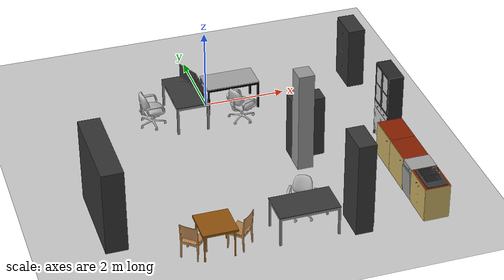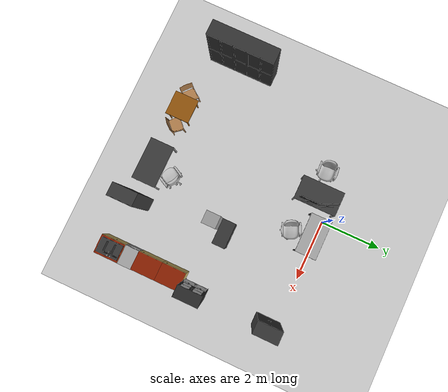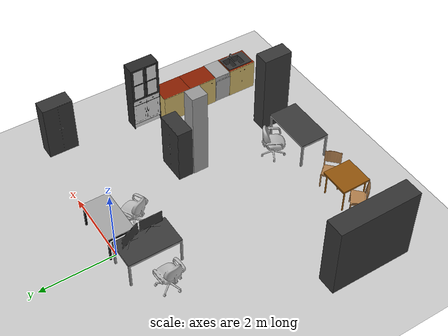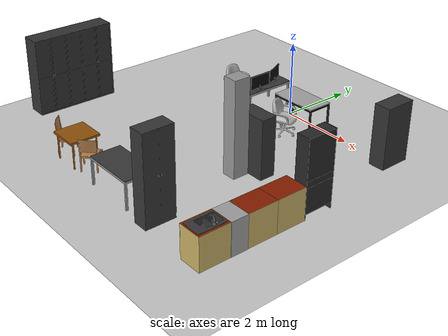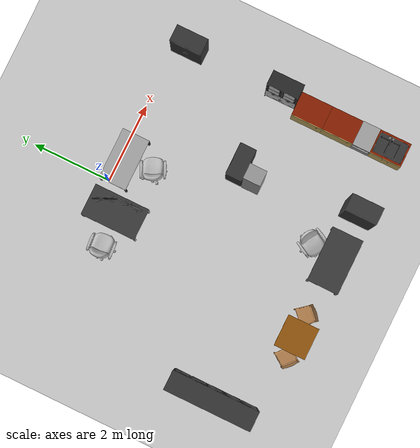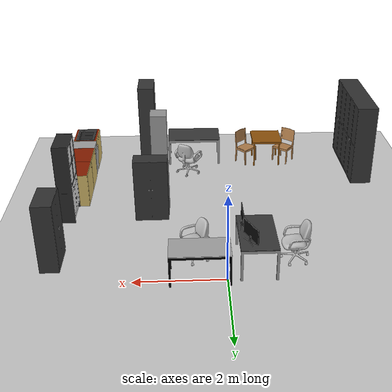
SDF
<sdf version="1.6">
 <world name="default">
  <model name="ground_plane">
   <static>1</static>
   <link name="link">
    <collision name="collision">
     <geometry><plane><normal>0 0 1</normal><size>100 100</size></plane></geometry>
     <surface><friction><ode><mu>100</mu><mu2>50</mu2></ode></friction></surface>
    </collision>
    <visual name="visual">
     <cast_shadows>0</cast_shadows>
     <geometry><plane><normal>0 0 1</normal><size>100 100</size></plane></geometry>
     <material>
      <script><uri>file://media/materials/scripts/gazebo.material</uri><name>Gazebo/Grey</name></script>
     </material>
    </visual>
   </link>
  </model>
  <model name="012_pillar">
   <pose>1.4352 -3.125 0 0 0 -1.5708</pose>
   <link name="Wall_6">
    <collision name="Wall_6_Collision">
     <geometry><box><size>0.43 0.38 2.5</size></box></geometry>
     <pose>0 0 1.25 0 -0 0</pose>
    </collision>
    <visual name="Wall_6_Visual">
     <pose>0 0 1.25 0 -0 0</pose>
     <geometry><box><size>0.43 0.38 2.5</size></box></geometry>
     <material>
      <script><uri>file://media/materials/scripts/gazebo.material</uri><name>Gazebo/Grey</name></script>
      <ambient>1 1 1 1</ambient>
     </material>
    </visual>
   </link>
   <static>1</static>
  </model>
  <model name="rectangle_table">
   <static>1</static>
   <link name="rectangle_table">
    <collision name="surface">
     <pose>0 0 0.7 0 -0 0</pose>
     <geometry><box><size>1.4 0.8 0.079</size></box></geometry>
     <surface><friction><ode><mu>0.6</mu><mu2>0.6</mu2></ode></friction></surface>
    </collision>
    <collision name="left_front_leg">
     <pose>-0.6764 0.3733 0.3305 0 -0 0</pose>
     <geometry><box><size>0.0467 0.0534 0.661</size></box></geometry>
    </collision>
    <collision name="right_front_leg">
     <pose>0.6764 0.3733 0.3305 0 -0 0</pose>
     <geometry><box><size>0.0467 0.0534 0.661</size></box></geometry>
    </collision>
    <collision name="left_back_leg">
     <pose>-0.6764 -0.3733 0.3305 0 -0 0</pose>
     <geometry><box><size>0.0467 0.0534 0.661</size></box></geometry>
    </collision>
    <collision name="right_back_leg">
     <pose>0.6764 -0.3733 0.3305 0 -0 0</pose>
     <geometry><box><size>0.0467 0.0534 0.661</size></box></geometry>
    </collision>
    <visual name="rectangle_table_mesh">
     <geometry><mesh><uri>model://rectangle_table/meshes/model.dae</uri><scale>1 1 1</scale></mesh></geometry>
    </visual>
   </link>
   <pose>-0.647988 -0.512943 0.1 0 0 -1.5708</pose>
  </model>
  <model name="locker_high">
   <static>1</static>
   <link name="locker_high">
    <collision name="locker_high">
     <pose>0 0 1.15 0 -0 0</pose>
     <geometry><box><size>0.44 0.8 2.3</size></box></geometry>
    </collision>
    <visual name="locker_high_mesh">
     <geometry><mesh><uri>model://locker_high/meshes/model.dae</uri><scale>1 1 1</scale></mesh></geometry>
    </visual>
   </link>
   <pose>1.8452 -5.7 0 0 -0 0</pose>
  </model>
  <model name="locker_small">
   <static>1</static>
   <link name="locker_small">
    <collision name="locker_small">
     <pose>0 0 0.775 0 -0 0</pose>
     <geometry><box><size>0.44 0.8 1.55</size></box></geometry>
    </collision>
    <visual name="locker_small_mesh">
     <geometry><mesh><uri>model://locker_small/meshes/model.dae</uri><scale>1 1 1</scale></mesh></geometry>
    </visual>
   </link>
   <pose>1.65271 -2.6794 0 0 -0 1.5708</pose>
  </model>
  <model name="sink">
   <static>1</static>
   <link name="sink">
    <collision name="sink">
     <pose>0 0 0.4398 0 -0 0</pose>
     <geometry><box><size>0.64 0.8 0.8796</size></box></geometry>
    </collision>
    <collision name="tap">
     <pose>-0.15 -0.0775 0.9746 0 -0 0</pose>
     <geometry><box><size>0.22 0.13 0.19</size></box></geometry>
    </collision>
    <visual name="sink_mesh">
     <geometry><mesh><uri>model://sink/meshes/model.dae</uri><scale>1 1 1</scale></mesh></geometry>
    </visual>
   </link>
   <pose>3.52998 -5.69531 0 0 0 -3.14159</pose>
  </model>
  <model name="dishwasher">
   <static>1</static>
   <link name="dishwasher">
    <collision name="dishwasher">
     <pose>0 0 0.425 0 -0 0</pose>
     <geometry><box><size>0.65 0.45 0.85</size></box></geometry>
    </collision>
    <visual name="dishwasher_mesh">
     <geometry><mesh><uri>model://dishwasher/meshes/model.dae</uri><scale>1 1 1</scale></mesh></geometry>
    </visual>
   </link>
   <pose>3.52499 -5.07031 0 0 0 -3.14159</pose>
  </model>
  <model name="cupboard">
   <static>1</static>
   <link name="cupboard">
    <collision name="cupboard">
     <pose>0 0 0.425 0 -0 0</pose>
     <geometry><box><size>0.64 0.8 0.85</size></box></geometry>
    </collision>
    <visual name="cupboard_mesh">
     <geometry><mesh><uri>model://cupboard/meshes/model.dae</uri><scale>1 1 1</scale></mesh></geometry>
    </visual>
   </link>
   <pose>3.52999 -4.44463 0 0 -0 3.14159</pose>
  </model>
  <model name="cupboard_clone">
   <static>1</static>
   <link name="cupboard">
    <collision name="cupboard">
     <pose>0 0 0.425 0 -0 0</pose>
     <geometry><box><size>0.64 0.8 0.85</size></box></geometry>
    </collision>
    <visual name="cupboard_mesh">
     <geometry><mesh><uri>model://cupboard/meshes/model.dae</uri><scale>1 1 1</scale></mesh></geometry>
    </visual>
   </link>
   <pose>3.52999 -3.64445 0 0 -0 3.14159</pose>
  </model>
  <model name="square_table">
   <static>1</static>
   <link name="table_link">
    <collision name="surface">
     <pose>0 0 0.7115 0 -0 0</pose>
     <geometry><box><size>0.8 0.8 0.057</size></box></geometry>
     <surface><friction><ode><mu>0.6</mu><mu2>0.6</mu2></ode></friction></surface>
    </collision>
    <collision name="front_left_leg">
     <pose>0.3412 0.3212 0.3415 0 -0 0</pose>
     <geometry><cylinder><radius>0.02</radius><length>0.683</length></cylinder></geometry>
    </collision>
    <collision name="front_right_leg">
     <pose>0.3412 -0.3212 0.3415 0 -0 0</pose>
     <geometry><cylinder><radius>0.02</radius><length>0.683</length></cylinder></geometry>
    </collision>
    <collision name="back_right_leg">
     <pose>-0.3412 -0.3212 0.3415 0 -0 0</pose>
     <geometry><cylinder><radius>0.02</radius><length>0.683</length></cylinder></geometry>
    </collision>
    <collision name="back_left_leg">
     <pose>-0.3412 0.3212 0.3415 0 -0 0</pose>
     <geometry><cylinder><radius>0.02</radius><length>0.683</length></cylinder></geometry>
    </collision>
    <visual name="table_mesh">
     <geometry><mesh><uri>model://square_table/meshes/model.dae</uri><scale>1 1 1</scale></mesh></geometry>
    </visual>
   </link>
   <pose>-1.42594 -5.64133 0 0 -0 0</pose>
  </model>
  <model name="chair">
   <static>1</static>
   <link name="chair">
    <collision name="chair">
     <geometry><mesh><uri>model://chair/meshes/model.dae</uri><scale>1 1 1</scale></mesh></geometry>
    </collision>
    <visual name="chair_mesh">
     <geometry><mesh><uri>model://chair/meshes/model.dae</uri><scale>1 1 1</scale></mesh></geometry>
     <material>
      <script>
       <uri>model://chair/materials/scripts</uri>
       <uri>model://chair/materials/textures</uri>
       <name>Chair/Wood</name>
      </script>
     </material>
    </visual>
   </link>
   <pose>-0.850767 -5.64843 0 0 -0 0.774696</pose>
  </model>
  <model name="chair_0">
   <static>1</static>
   <link name="chair">
    <collision name="chair">
     <geometry><mesh><uri>model://chair/meshes/model.dae</uri><scale>1 1 1</scale></mesh></geometry>
    </collision>
    <visual name="chair_mesh">
     <geometry><mesh><uri>model://chair/meshes/model.dae</uri><scale>1 1 1</scale></mesh></geometry>
     <material>
      <script>
       <uri>model://chair/materials/scripts</uri>
       <uri>model://chair/materials/textures</uri>
       <name>Chair/Wood</name>
      </script>
     </material>
    </visual>
   </link>
   <pose>-1.95208 -5.6581 0 0 0 -0.716758</pose>
  </model>
  <model name="swivel_chair">
   <static>1</static>
   <link name="swivel_chair">
    <collision name="swivel_chair">
     <geometry><mesh><uri>model://swivel_chair/meshes/model.dae</uri><scale>1 1 1</scale></mesh></geometry>
    </collision>
    <visual name="swivel_chair_mesh">
     <geometry><mesh><uri>model://swivel_chair/meshes/model.dae</uri><scale>1 1 1</scale></mesh></geometry>
     <material>
      <script>
       <uri>model://swivel_chair/materials/scripts</uri>
       <uri>model://swivel_chair/materials/textures</uri>
       <name>Swivel_chair/Fabric</name>
      </script>
     </material>
    </visual>
   </link>
   <pose>-1.55047 -0.573463 0.1 0 -0 1.63977</pose>
  </model>
  <model name="wardrobe">
   <static>1</static>
   <link name="wardrobe">
    <collision name="wardrobe">
     <pose>0 0 1 0 -0 0</pose>
     <geometry><box><size>0.53 2.174 2</size></box></geometry>
    </collision>
    <visual name="wardrobe_mesh">
     <geometry><mesh><uri>model://wardrobe/meshes/model.dae</uri><scale>1 1 1</scale></mesh></geometry>
    </visual>
   </link>
   <pose>-3.5731 -4.46694 0.4 0 -0 0</pose>
  </model>
  <model name="desk">
   <static>1</static>
   <link name="desk">
    <collision name="surface">
     <pose>0 0 0.7 0 -0 0</pose>
     <geometry><box><size>0.7 1.3 0.08</size></box></geometry>
     <surface><friction><ode><mu>0.6</mu><mu2>0.6</mu2></ode></friction></surface>
    </collision>
    <collision name="left_front_leg">
     <pose>0.3283 0.6266 0.33 0 -0 0</pose>
     <geometry><box><size>0.0434 0.0467 0.66</size></box></geometry>
    </collision>
    <collision name="right_front_leg">
     <pose>0.3283 -0.6266 0.33 0 -0 0</pose>
     <geometry><box><size>0.0434 0.0467 0.66</size></box></geometry>
    </collision>
    <collision name="left_back_leg">
     <pose>-0.3283 0.6266 0.33 0 -0 0</pose>
     <geometry><box><size>0.0434 0.0467 0.66</size></box></geometry>
    </collision>
    <collision name="right_back_leg">
     <pose>-0.3283 -0.6266 0.33 0 -0 0</pose>
     <geometry><box><size>0.0434 0.0467 0.66</size></box></geometry>
    </collision>
    <visual name="desk_mesh">
     <geometry><mesh><uri>model://desk/meshes/model.dae</uri><scale>1 1 1</scale></mesh></geometry>
    </visual>
   </link>
   <pose>0.573456 -0.150678 0 0 0 -1.5708</pose>
  </model>
  <model name="rectangle_table_clone_0">
   <static>1</static>
   <link name="rectangle_table">
    <collision name="surface">
     <pose>0 0 0.7 0 -0 0</pose>
     <geometry><box><size>1.4 0.8 0.079</size></box></geometry>
     <surface><friction><ode><mu>0.6</mu><mu2>0.6</mu2></ode></friction></surface>
    </collision>
    <collision name="left_front_leg">
     <pose>-0.6764 0.3733 0.3305 0 -0 0</pose>
     <geometry><box><size>0.0467 0.0534 0.661</size></box></geometry>
    </collision>
    <collision name="right_front_leg">
     <pose>0.6764 0.3733 0.3305 0 -0 0</pose>
     <geometry><box><size>0.0467 0.0534 0.661</size></box></geometry>
    </collision>
    <collision name="left_back_leg">
     <pose>-0.6764 -0.3733 0.3305 0 -0 0</pose>
     <geometry><box><size>0.0467 0.0534 0.661</size></box></geometry>
    </collision>
    <collision name="right_back_leg">
     <pose>0.6764 -0.3733 0.3305 0 -0 0</pose>
     <geometry><box><size>0.0467 0.0534 0.661</size></box></geometry>
    </collision>
    <visual name="rectangle_table_mesh">
     <geometry><mesh><uri>model://rectangle_table/meshes/model.dae</uri><scale>1 1 1</scale></mesh></geometry>
    </visual>
   </link>
   <pose>0.586171 -5.67186 0.1 0 -0 0</pose>
  </model>
  <model name="swivel_chair_clone_0">
   <static>1</static>
   <link name="swivel_chair">
    <collision name="swivel_chair">
     <geometry><mesh><uri>model://swivel_chair/meshes/model.dae</uri><scale>1 1 1</scale></mesh></geometry>
    </collision>
    <visual name="swivel_chair_mesh">
     <geometry><mesh><uri>model://swivel_chair/meshes/model.dae</uri><scale>1 1 1</scale></mesh></geometry>
     <material>
      <script>
       <uri>model://swivel_chair/materials/scripts</uri>
       <uri>model://swivel_chair/materials/textures</uri>
       <name>Swivel_chair/Fabric</name>
      </script>
     </material>
    </visual>
   </link>
   <pose>0.771332 -4.96995 0 0 0 -0.5</pose>
  </model>
  <model name="glasscase">
   <static>1</static>
   <link name="glasscase">
    <collision name="glasscase">
     <pose>0 0 0.991 0 -0 0</pose>
     <geometry><box><size>0.387 0.8 1.982</size></box></geometry>
    </collision>
    <visual name="glasscase_mesh">
     <geometry><mesh><uri>model://glasscase/meshes/model.dae</uri><scale>1 1 1</scale></mesh></geometry>
    </visual>
   </link>
   <pose>3.65649 -2.84413 0 0 -0 3.14159</pose>
  </model>
  <model name="locker_small_clone">
   <static>1</static>
   <link name="locker_small">
    <collision name="locker_small">
     <pose>0 0 0.775 0 -0 0</pose>
     <geometry><box><size>0.44 0.8 1.55</size></box></geometry>
    </collision>
    <visual name="locker_small_mesh">
     <geometry><mesh><uri>model://locker_small/meshes/model.dae</uri><scale>1 1 1</scale></mesh></geometry>
    </visual>
   </link>
   <pose>3.63 -0.376701 0.316667 0 -0 3.14159</pose>
  </model>
  <model name="swivel_chair_clone_0_clone">
   <static>1</static>
   <link name="swivel_chair">
    <collision name="swivel_chair">
     <geometry><mesh><uri>model://swivel_chair/meshes/model.dae</uri><scale>1 1 1</scale></mesh></geometry>
    </collision>
    <visual name="swivel_chair_mesh">
     <geometry><mesh><uri>model://swivel_chair/meshes/model.dae</uri><scale>1 1 1</scale></mesh></geometry>
     <material>
      <script>
       <uri>model://swivel_chair/materials/scripts</uri>
       <uri>model://swivel_chair/materials/textures</uri>
       <name>Swivel_chair/Fabric</name>
      </script>
     </material>
    </visual>
   </link>
   <pose>0.619451 -0.877979 0 0 -0 2</pose>
  </model>
  <model name="tv">
   <static>1</static>
   <link name="tv">
    <collision name="tv_upper">
     <pose>0 0 0.26 0 -0 0</pose>
     <geometry><box><size>0.582 0.032 0.28</size></box></geometry>
    </collision>
    <collision name="tv_lower">
     <pose>0 0 0.06 0 -0 0</pose>
     <geometry><box><size>0.58 0.16 0.12</size></box></geometry>
    </collision>
    <visual name="tv_mesh">
     <geometry><mesh><uri>model://tv/meshes/model.dae</uri><scale>1 1 1</scale></mesh></geometry>
    </visual>
   </link>
   <pose>-0.353459 -0.787917 0.84 0 -0 1.5708</pose>
  </model>
  <model name="tv_clone">
   <static>1</static>
   <link name="tv">
    <collision name="tv_upper">
     <pose>0 0 0.26 0 -0 0</pose>
     <geometry><box><size>0.582 0.032 0.28</size></box></geometry>
    </collision>
    <collision name="tv_lower">
     <pose>0 0 0.06 0 -0 0</pose>
     <geometry><box><size>0.58 0.16 0.12</size></box></geometry>
    </collision>
    <visual name="tv_mesh">
     <geometry><mesh><uri>model://tv/meshes/model.dae</uri><scale>1 1 1</scale></mesh></geometry>
    </visual>
   </link>
   <pose>-0.476515 -0.174508 0.84 0 -0 2</pose>
  </model>
 </world>
</sdf>
